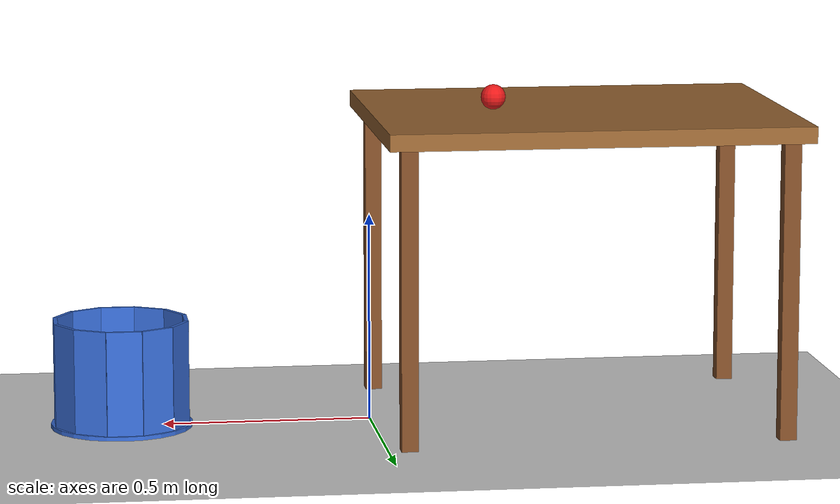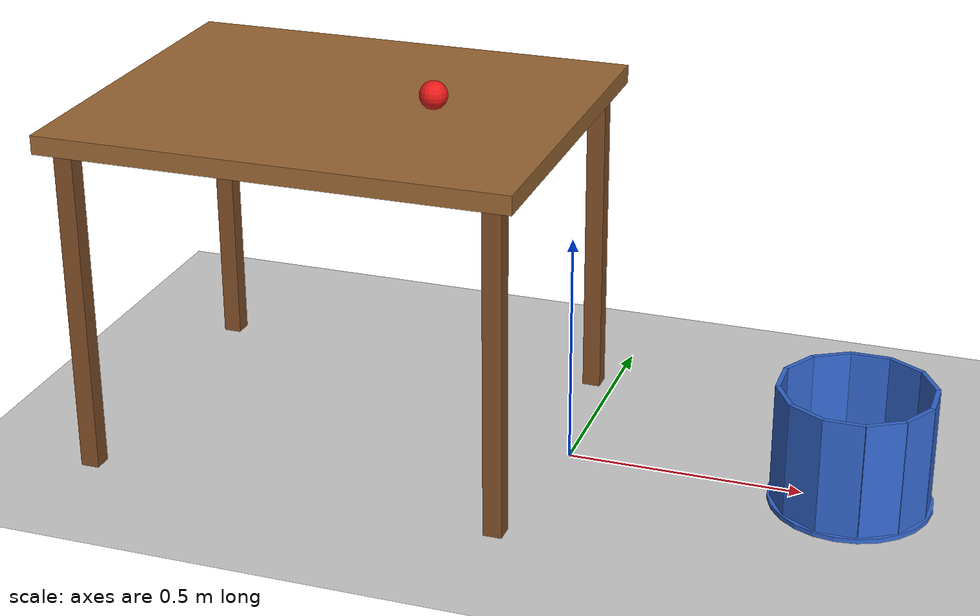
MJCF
<mujoco model="ball_off_table_into_bucket">
  <option timestep="0.002"/>
  <worldbody>
    <light name="sun" pos="0 0 3" dir="0 0 -1" directional="true"/>
    <geom name="floor" type="plane" size="3 3 0.1" rgba="0.8 0.8 0.8 1"/>

    <body name="table" pos="0 0 0">
      <geom name="table_top" type="box" pos="-0.5 0 0.73" size="0.5 0.4 0.02" rgba="0.6 0.4 0.2 1"/>
      <geom name="table_leg1" type="box" pos="-0.95 0.35 0.365" size="0.02 0.02 0.365" rgba="0.5 0.3 0.15 1"/>
      <geom name="table_leg2" type="box" pos="-0.95 -0.35 0.365" size="0.02 0.02 0.365" rgba="0.5 0.3 0.15 1"/>
      <geom name="table_leg3" type="box" pos="-0.05 0.35 0.365" size="0.02 0.02 0.365" rgba="0.5 0.3 0.15 1"/>
      <geom name="table_leg4" type="box" pos="-0.05 -0.35 0.365" size="0.02 0.02 0.365" rgba="0.5 0.3 0.15 1"/>
    </body>

    <body name="bucket" pos="0.6 0 0">
      <geom name="bucket_floor" type="cylinder" pos="0 0 0.005" size="0.17 0.005" condim="6" friction="1 0.005 0.005" rgba="0.2 0.4 0.8 1"/>
      <geom name="bucket_wall0" type="box" pos="0.155 0 0.135" euler="0 0 0" size="0.005 0.042 0.125" rgba="0.2 0.4 0.8 1"/>
      <geom name="bucket_wall1" type="box" pos="0.1342 0.0775 0.135" euler="0 0 30" size="0.005 0.042 0.125" rgba="0.2 0.4 0.8 1"/>
      <geom name="bucket_wall2" type="box" pos="0.0775 0.1342 0.135" euler="0 0 60" size="0.005 0.042 0.125" rgba="0.2 0.4 0.8 1"/>
      <geom name="bucket_wall3" type="box" pos="0 0.155 0.135" euler="0 0 90" size="0.005 0.042 0.125" rgba="0.2 0.4 0.8 1"/>
      <geom name="bucket_wall4" type="box" pos="-0.0775 0.1342 0.135" euler="0 0 120" size="0.005 0.042 0.125" rgba="0.2 0.4 0.8 1"/>
      <geom name="bucket_wall5" type="box" pos="-0.1342 0.0775 0.135" euler="0 0 150" size="0.005 0.042 0.125" rgba="0.2 0.4 0.8 1"/>
      <geom name="bucket_wall6" type="box" pos="-0.155 0 0.135" euler="0 0 180" size="0.005 0.042 0.125" rgba="0.2 0.4 0.8 1"/>
      <geom name="bucket_wall7" type="box" pos="-0.1342 -0.0775 0.135" euler="0 0 210" size="0.005 0.042 0.125" rgba="0.2 0.4 0.8 1"/>
      <geom name="bucket_wall8" type="box" pos="-0.0775 -0.1342 0.135" euler="0 0 240" size="0.005 0.042 0.125" rgba="0.2 0.4 0.8 1"/>
      <geom name="bucket_wall9" type="box" pos="0 -0.155 0.135" euler="0 0 270" size="0.005 0.042 0.125" rgba="0.2 0.4 0.8 1"/>
      <geom name="bucket_wall10" type="box" pos="0.0775 -0.1342 0.135" euler="0 0 300" size="0.005 0.042 0.125" rgba="0.2 0.4 0.8 1"/>
      <geom name="bucket_wall11" type="box" pos="0.1342 -0.0775 0.135" euler="0 0 330" size="0.005 0.042 0.125" rgba="0.2 0.4 0.8 1"/>
    </body>

    <body name="ball" pos="-0.3 0 0.78">
      <freejoint name="ball_free"/>
      <geom name="ball" type="sphere" size="0.03" density="1000" rgba="0.9 0.1 0.1 1"/>
    </body>
  </worldbody>

  <keyframe>
    <key name="start" qpos="-0.3 0 0.78 1 0 0 0" qvel="1.7 0 0 0 56.667 0"/>
  </keyframe>
</mujoco>
